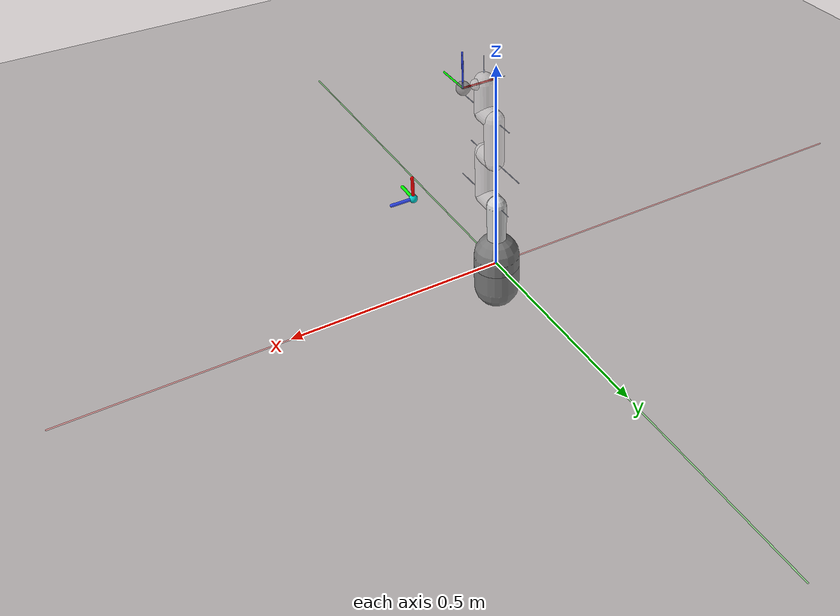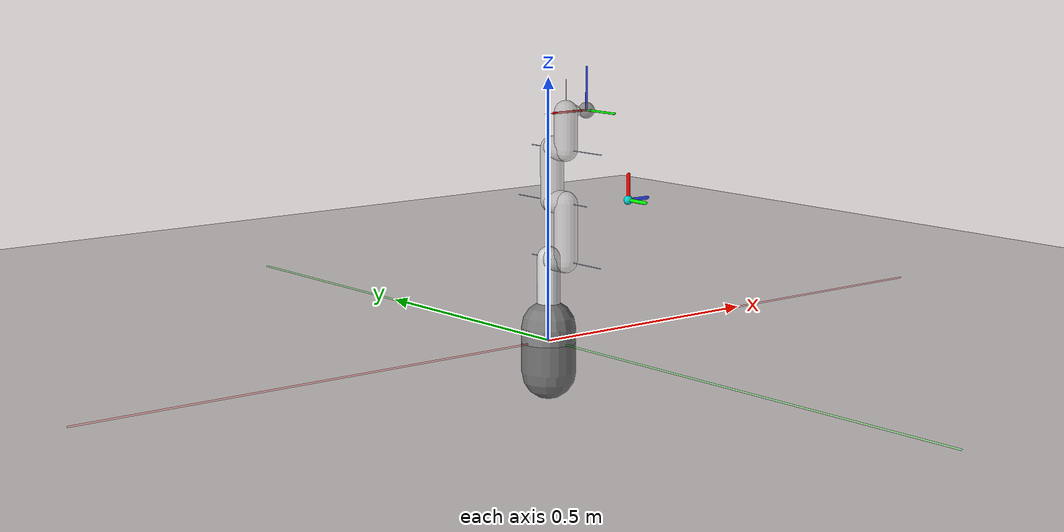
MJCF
<?xml version="1.0" ?>
<mujoco>
    <option gravity="0 0 0" integrator="implicitfast" timestep="0.002" cone="elliptic" impratio="3" noslip_iterations="6"/>
    <compiler angle="degree"/>
    <visual>
        <headlight active="0"/>
    </visual>
    <asset>
        <texture builtin="checker" height="100" name="texplane1" rgb1="0 0 0" rgb2="0.8 0.8 0.8" type="2d" width="100"/>
        <material name="MatPlane" reflectance="0" shininess="1" specular="1" texrepeat="60 60" texture="texplane1"/>
    </asset>

    <worldbody>
        <geom conaffinity="1" condim="4" name="floor" rgba="0.42 0.42 0.42 .3" size="40 40 40" type="plane" material="MatPlane" friction="1 0.01 0.001"/>
        <geom type="capsule" size="0.0015" fromto="-1 0 0  1 0 0" contype="0" conaffinity="0" mass=".001" rgba="1 0 0 0.3"/>
        <geom type="capsule" size="0.0015" fromto="0 -1 0  0 1 0" contype="0" conaffinity="0" mass=".001" rgba="0 1 0 0.3"/>
        <light cutoff="100" ambient=".3 .3 .3" diffuse="1 1 1" specular=".8 .8 .8" directional="false" pos="5 -3 7" castshadow="false"/>
        <light cutoff="100" ambient=".2 .2 .2" diffuse=".6 .6 .6" specular=".7 .7 .7" directional="false" pos="-3 -7 4" castshadow="false"/>

        <body name="target" pos=".2 0 .25" xyaxes="0 0 1 0 -1 0">
            <geom type="sphere"  size="0.009" contype="0" conaffinity="0" rgba="0 .8 .8 1"/>
            <geom type="capsule" size="0.0035" fromto="0 0 0  .05 0 0" contype="0" conaffinity="0" mass=".001" rgba="1 0 0 1"/>
            <geom type="capsule" size="0.0035" fromto="0 0 0  0 .05 0" contype="0" conaffinity="0" mass=".001" rgba="0 1 0 1"/>
            <geom type="capsule" size="0.0035" fromto="0 0 0 0 0 0.05" contype="0" conaffinity="0" rgba=".2 .3 1 1"/>
        </body>

        <body name = "A" pos="0 0 -.10">
            <geom type="capsule" size="0.052" fromto="0 0 0.04 0 0 0.126" rgba="0.47 0.47 0.47 1"/>
            <geom type="capsule" size="0.022" fromto="0 0 0.1 0 0 0.26" contype="0" conaffinity="0" rgba="0.8 .8 .8 1"/>
            <joint name="joint_1" type="hinge" range="-165 165" axis="0 0 1"/>
            <geom type="cylinder" size=".0007" fromto="0 0 -.1 0 0 .1" contype="0" conaffinity="0"  rgba=".5 .6 .8 .5"/>
            <body name="B" pos="0 -.05 .26">
                <geom type="capsule" size="0.022" fromto="0 0 0 0 0 0.11" rgba="0.7 0.7 0.7 .5"/>
                <geom type="cylinder" size="0.0221" fromto="0 0 0 0 0.04 0" rgba="0.7 0.7 0.7 .5"/>
                <joint name="joint_2" type="hinge" range="10 165" axis="0 1 0"/>
                <geom type="cylinder" size=".0007" fromto="0 -.1 0 0 .1 0" contype="0" conaffinity="0"  rgba=".5 .6 .8 .5"/>
                <body name="C" pos="0 0.04 0.11">
                    <geom type="capsule" size="0.022" fromto="0 0 0 0 0 0.1" rgba="0.7 0.7 0.7 .5"/>
                    <geom type="cylinder" size="0.0221" fromto="0 0 0 0 -.04 0" rgba="0.7 0.7 0.7 .5"/>
                    <joint name="joint_3" type="hinge" range="10 165" axis="0 1 0"/>
                    <geom type="cylinder" size=".0007" fromto="0 -.1 0 0 .1 0" contype="0" conaffinity="0"  rgba=".5 .6 .8 .5"/>
                    <body name="D" pos="0 -.04 0.1">
                        <joint name="joint_4" type="hinge" range="-165 165" axis="0 1 0"/>
                        <geom type="cylinder" size=".0007" fromto="0 -.1 0 0 .1 0" contype="0" conaffinity="0"  rgba=".5 .6 .8 .5"/>
                        <geom type="capsule" size="0.022" fromto="0 0 0 0 0 0.07" rgba="0.7 0.7 0.7 .51"/>
                        <geom type="cylinder" size="0.0221" fromto="0 0 0 0 0.04 0" rgba="0.7 0.7 0.7 .51"/>
                        <body name="E" pos="0 0 0.07" xyaxes="-1 0 0 0 -1 0">
                            <joint name="joint_5" type="hinge" range="-165 165" axis="0 0 1"/>
                            <geom type="cylinder" size=".0007" fromto="0 0 -.06 0 0 .06" rgba=".5 .6 .8 .5"/>
                            <geom type="capsule" size="0.012" fromto="0 0 0 -.02 0 0" contype="0" conaffinity="0" rgba="0.7 0.7 0.7 .51"/>
                            <body name="F" pos="0 0 0">
                                <joint name="joint_6" type="hinge" range="-180 180" axis="1 0 0"/>
                                <geom type="cylinder" size=".0007" fromto="-.05 0 0 .05 0 0" rgba=".5 .6 .8 .5"/>
                                <body name="gripsite" pos="-.05 0 0">
                                    <site type="sphere" name="gripsite" size="0.015" rgba="0.4 .4 .4 .6"/>
                                    <geom type="capsule" size="0.0020" fromto="0 0 0  .08 0 0" contype="0" conaffinity="0" mass="1" rgba="1 0 0 1"/>
                                    <geom type="capsule" size="0.0020" fromto="0 0 0  0 .08 0" contype="0" conaffinity="0" mass="1" rgba="0 1 0 1"/>
                                    <geom type="capsule" size="0.0020" fromto="0 0 0  0 0 0.08" contype="0" conaffinity="0" rgba=".2 .3 1 1"/>
                                </body>
                            </body>
                        </body>
                    </body>
                </body>
            </body>
        </body>
    </worldbody>

    <actuator>
        <position name="joint_1" inheritrange="1" kp="60" kv="12" joint="joint_1"/>
        <position name="joint_2" inheritrange="1" kp="120" kv="24" joint="joint_2"/>
        <position name="joint_3" inheritrange="1" kp="60" kv="12" joint="joint_3"/>
        <position name="joint_4" inheritrange="1" kp="60" kv="12" joint="joint_4"/>
        <position name="joint_5" inheritrange="1" kp="20" kv="4" joint="joint_5"/>
        <position name="joint_6" inheritrange="1" kp="6" kv="1" joint="joint_6"/>
    </actuator>
</mujoco>
